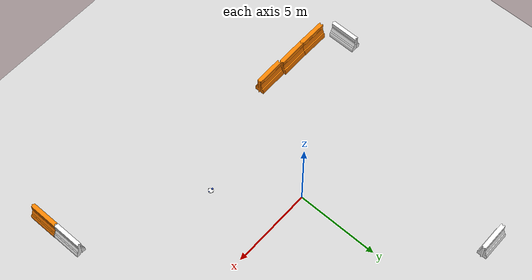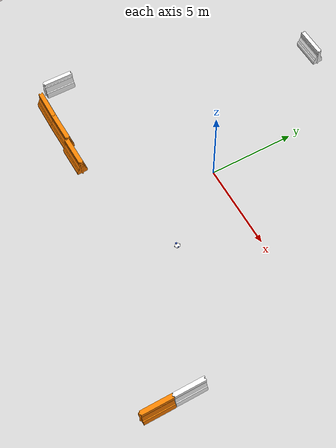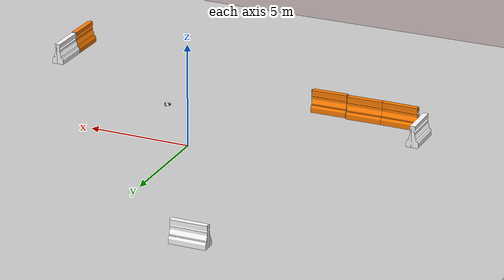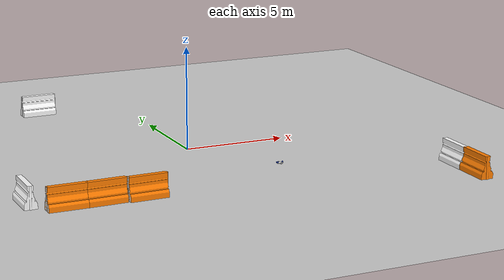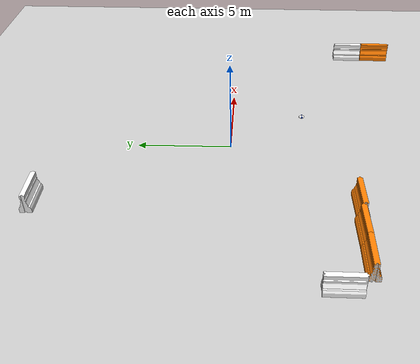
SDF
<sdf version="1.4">
 <world name="default">
  <light name="sun" type="directional">
   <pose>0 0 10 0 -0 0</pose>
   <diffuse>0.8 0.8 0.8 1</diffuse>
   <specular>0.2 0.2 0.2 1</specular>
   <attenuation>
    <range>1000</range>
    <constant>0.9</constant>
    <linear>0.01</linear>
    <quadratic>0.001</quadratic>
   </attenuation>
   <direction>-0.5 0.1 -0.9</direction>
  </light>
  <model name="ground_plane">
   <static>1</static>
   <link name="link">
    <collision name="collision">
     <geometry><plane><normal>0 0 1</normal><size>100 100</size></plane></geometry>
     <surface><friction><ode><mu>100</mu><mu2>50</mu2></ode></friction></surface>
    </collision>
    <visual name="visual">
     <cast_shadows>0</cast_shadows>
     <geometry><plane><normal>0 0 1</normal><size>100 100</size></plane></geometry>
     <material>
      <script><uri>file://media/materials/scripts/gazebo.material</uri><name>Gazebo/Grey</name></script>
     </material>
    </visual>
    <velocity_decay><linear>0</linear><angular>0</angular></velocity_decay>
   </link>
  </model>
  <physics type="ode">
   <max_step_size>0.001</max_step_size>
   <real_time_factor>1</real_time_factor>
   <real_time_update_rate>0</real_time_update_rate>
   <gravity>0 0 -9.8</gravity>
  </physics>
  <scene><ambient>0.4 0.4 0.4 1</ambient><background>0.7 0.7 0.7 1</background><shadows>1</shadows></scene>
  <spherical_coordinates>
   <surface_model>EARTH_WGS84</surface_model>
   <latitude_deg>0</latitude_deg>
   <longitude_deg>0</longitude_deg>
   <elevation>0</elevation>
   <heading_deg>0</heading_deg>
  </spherical_coordinates>
  <model name="drc_practice_organge_jersey_barrier">
   <static>1</static>
   <link name="link">
    <visual name="visual">
     <geometry>
      <mesh><uri>model://drc_practice_orange_jersey_barrier/meshes/jersey_barrier.dae</uri></mesh>
     </geometry>
    </visual>
    <collision name="collision">
     <geometry>
      <mesh><uri>model://drc_practice_orange_jersey_barrier/meshes/jersey_barrier.dae</uri></mesh>
     </geometry>
    </collision>
    <velocity_decay><linear>0</linear><angular>0</angular></velocity_decay>
   </link>
   <pose>-4.47578 -6.34119 0 0 -0 1.59364</pose>
  </model>
  <model name="drc_practice_white_jersey_barrier">
   <static>1</static>
   <link name="link">
    <visual name="visual">
     <geometry>
      <mesh><uri>model://drc_practice_white_jersey_barrier/meshes/jersey_barrier.dae</uri></mesh>
     </geometry>
    </visual>
    <collision name="collision">
     <geometry>
      <mesh><uri>model://drc_practice_white_jersey_barrier/meshes/jersey_barrier.dae</uri></mesh>
     </geometry>
    </collision>
    <velocity_decay><linear>0</linear><angular>0</angular></velocity_decay>
   </link>
   <pose>-9.48699 -4.9367 0 0 -0 0</pose>
  </model>
  <model name="drc_practice_organge_jersey_barrier_0">
   <static>1</static>
   <link name="link">
    <visual name="visual">
     <geometry>
      <mesh><uri>model://drc_practice_orange_jersey_barrier/meshes/jersey_barrier.dae</uri></mesh>
     </geometry>
    </visual>
    <collision name="collision">
     <geometry>
      <mesh><uri>model://drc_practice_orange_jersey_barrier/meshes/jersey_barrier.dae</uri></mesh>
     </geometry>
    </collision>
    <velocity_decay><linear>0</linear><angular>0</angular></velocity_decay>
   </link>
   <pose>-6.30934 -6.26351 0 0 -0 1.59467</pose>
  </model>
  <model name="drc_practice_organge_jersey_barrier_1">
   <static>1</static>
   <link name="link">
    <visual name="visual">
     <geometry>
      <mesh><uri>model://drc_practice_orange_jersey_barrier/meshes/jersey_barrier.dae</uri></mesh>
     </geometry>
    </visual>
    <collision name="collision">
     <geometry>
      <mesh><uri>model://drc_practice_orange_jersey_barrier/meshes/jersey_barrier.dae</uri></mesh>
     </geometry>
    </collision>
    <velocity_decay><linear>0</linear><angular>0</angular></velocity_decay>
   </link>
   <pose>-8.06556 -6.2736 0 0 -0 1.57109</pose>
  </model>
  <model name="drc_practice_white_jersey_barrier_0">
   <static>1</static>
   <link name="link">
    <visual name="visual">
     <geometry>
      <mesh><uri>model://drc_practice_white_jersey_barrier/meshes/jersey_barrier.dae</uri></mesh>
     </geometry>
    </visual>
    <collision name="collision">
     <geometry>
      <mesh><uri>model://drc_practice_white_jersey_barrier/meshes/jersey_barrier.dae</uri></mesh>
     </geometry>
    </collision>
    <velocity_decay><linear>0</linear><angular>0</angular></velocity_decay>
   </link>
   <pose>10.3176 -7.4365 0 0 -0 0</pose>
  </model>
  <model name="drc_practice_white_jersey_barrier_1">
   <static>1</static>
   <link name="link">
    <visual name="visual">
     <geometry>
      <mesh><uri>model://drc_practice_white_jersey_barrier/meshes/jersey_barrier.dae</uri></mesh>
     </geometry>
    </visual>
    <collision name="collision">
     <geometry>
      <mesh><uri>model://drc_practice_white_jersey_barrier/meshes/jersey_barrier.dae</uri></mesh>
     </geometry>
    </collision>
    <velocity_decay><linear>0</linear><angular>0</angular></velocity_decay>
   </link>
   <pose>-4.54271 9.38577 0 0 -0 1.59123</pose>
  </model>
  <model name="drc_practice_organge_jersey_barrier_2">
   <static>1</static>
   <link name="link">
    <visual name="visual">
     <geometry>
      <mesh><uri>model://drc_practice_orange_jersey_barrier/meshes/jersey_barrier.dae</uri></mesh>
     </geometry>
    </visual>
    <collision name="collision">
     <geometry>
      <mesh><uri>model://drc_practice_orange_jersey_barrier/meshes/jersey_barrier.dae</uri></mesh>
     </geometry>
    </collision>
    <velocity_decay><linear>0</linear><angular>0</angular></velocity_decay>
   </link>
   <pose>10.3218 -9.21435 0 0 -0 0</pose>
  </model>
  <model name="robot">
   <link name="base_footprint">
    <inertial>
     <pose>-0.00166664 0 0.0413326 0 -0 0</pose>
     <mass>6.0001</mass>
     <inertia>
      <ixx>0.0304462</ixx>
      <ixy>0</ixy>
      <ixz>0.000191674</ixz>
      <iyy>0.0461545</iyy>
      <iyz>0</iyz>
      <izz>0.0740583</izz>
     </inertia>
    </inertial>
    <collision name="base_footprint_collision_base_link">
     <pose>0 0 0.04 0 -0 0</pose>
     <geometry><cylinder><length>0.02</length><radius>0.15</radius></cylinder></geometry>
    </collision>
    <collision name="base_footprint_collision_caster_back_link">
     <pose>-0.135 9.79355e-14 0.029 0 -0 0</pose>
     <geometry><sphere><radius>0.025</radius></sphere></geometry>
    </collision>
    <collision name="base_footprint_collision_caster_front_link">
     <pose>0.115 9.79355e-14 0.027 0 -0 0</pose>
     <geometry><sphere><radius>0.025</radius></sphere></geometry>
    </collision>
    <visual name="base_footprint_visual"><geometry><box><size>0.001 0.001 0.001</size></box></geometry></visual>
    <visual name="base_footprint_visual_base_link">
     <pose>0 0 0.04 0 -0 0</pose>
     <geometry><cylinder><length>0.02</length><radius>0.15</radius></cylinder></geometry>
     <material><script><name>Gazebo/White</name><uri>__default__</uri></script></material>
    </visual>
    <visual name="base_footprint_visual_caster_back_link">
     <pose>-0.115 9.79355e-14 0.029 0 -0 0</pose>
     <geometry><sphere><radius>0.025</radius></sphere></geometry>
    </visual>
    <visual name="base_footprint_visual_caster_front_link">
     <pose>0.115 9.79355e-14 0.027 0 -0 0</pose>
     <geometry><sphere><radius>0.025</radius></sphere></geometry>
    </visual>
    <visual name="base_footprint_visual_hokuyo_link">
     <pose>0.125 0 0.0725 0 -0 0</pose>
     <geometry><box><size>0.05 0.05 0.05</size></box></geometry>
     <material><script><name>Gazebo/Blue</name><uri>__default__</uri></script></material>
    </visual>
    <visual name="base_footprint_visual_hokuyo_link_b">
     <pose>-0.125 0 0.0725 0 -0 3.14</pose>
     <geometry><box><size>0.0833333 0.0833333 0.05</size></box></geometry>
     <material><script><name>Gazebo/Blue</name><uri>__default__</uri></script></material>
     <material><script><name>Gazebo/Red</name><uri>__default__</uri></script></material>
    </visual>
    <velocity_decay><linear>0</linear><angular>0</angular></velocity_decay>
    <velocity_decay><linear>0</linear><angular>0</angular></velocity_decay>
    <velocity_decay><linear>0</linear><angular>0</angular></velocity_decay>
    <velocity_decay><linear>0</linear><angular>0</angular></velocity_decay>
    <velocity_decay><linear>0</linear><angular>0</angular></velocity_decay>
    <sensor name="head_hokuyo_sensor" type="ray">
     <visualize>0</visualize>
     <update_rate>40</update_rate>
     <ray>
      <scan>
       <horizontal>
        <samples>720</samples>
        <resolution>1</resolution>
        <min_angle>-1.5708</min_angle>
        <max_angle>1.5708</max_angle>
       </horizontal>
      </scan>
      <range><min>0.1</min><max>10</max><resolution>0.001</resolution></range>
     </ray>
     <plugin name="gazebo_ros_head_hokuyo_controller" filename="libgazebo_ros_laser.so">
      <topicName>/scan</topicName>
      <frameName>hokuyo_link</frameName>
      <robotNamespace>/robot/</robotNamespace>
     </plugin>
     <pose>0.125 0 0.0725 0 -0 0</pose>
    </sensor>
    <velocity_decay><linear>0</linear><angular>0</angular></velocity_decay>
    <sensor name="back_hokuyo_sensor" type="ray">
     <visualize>0</visualize>
     <update_rate>40</update_rate>
     <ray>
      <scan>
       <horizontal>
        <samples>720</samples>
        <resolution>1</resolution>
        <min_angle>-1.5708</min_angle>
        <max_angle>1.5708</max_angle>
       </horizontal>
      </scan>
      <range><min>0.1</min><max>10</max><resolution>0.001</resolution></range>
     </ray>
     <plugin name="gazebo_ros_head_hokuyo_controller" filename="libgazebo_ros_laser.so">
      <topicName>/back/scan</topicName>
      <frameName>hokuyo_link_b</frameName>
      <robotNamespace>/robot/</robotNamespace>
     </plugin>
     <pose>-0.125 0 0.0725 0 -0 3.14</pose>
    </sensor>
   </link>
   <link name="front_left_wheel">
    <pose>0 -0.15 0.04 0 -0 0</pose>
    <inertial>
     <mass>2.5</mass>
     <inertia>
      <ixx>0.00108333</ixx>
      <ixy>0</ixy>
      <ixz>0</ixz>
      <iyy>0.00108333</iyy>
      <iyz>0</iyz>
      <izz>0.002</izz>
     </inertia>
    </inertial>
    <collision name="front_left_wheel_collision">
     <pose>0 0 0 1.5708 -0 0</pose>
     <geometry><cylinder><length>0.02</length><radius>0.04</radius></cylinder></geometry>
     <surface>
      <contact><ode><kp>1e+07</kp><kd>1</kd></ode></contact>
      <friction><ode><mu>1</mu><mu2>1</mu2><fdir1>1 0 0</fdir1></ode></friction>
     </surface>
    </collision>
    <visual name="front_left_wheel_visual">
     <pose>0 0 0 1.5708 -0 0</pose>
     <geometry><cylinder><length>0.02</length><radius>0.04</radius></cylinder></geometry>
     <material><script><name>Gazebo/Grey</name><uri>__default__</uri></script></material>
    </visual>
    <velocity_decay><linear>0</linear><angular>0</angular></velocity_decay>
   </link>
   <joint name="front_left_wheel_joint" type="revolute">
    <child>front_left_wheel</child>
    <parent>base_footprint</parent>
    <axis><xyz>0 1 0</xyz><limit><lower>-1e+16</lower><upper>1e+16</upper></limit></axis>
   </joint>
   <link name="front_right_wheel">
    <pose>0 0.15 0.04 0 -0 0</pose>
    <inertial>
     <mass>2.5</mass>
     <inertia>
      <ixx>0.00108333</ixx>
      <ixy>0</ixy>
      <ixz>0</ixz>
      <iyy>0.00108333</iyy>
      <iyz>0</iyz>
      <izz>0.002</izz>
     </inertia>
    </inertial>
    <collision name="front_right_wheel_collision">
     <pose>0 0 0 1.5708 -0 0</pose>
     <geometry><cylinder><length>0.02</length><radius>0.04</radius></cylinder></geometry>
     <surface>
      <contact><ode><kp>1e+07</kp><kd>1</kd></ode></contact>
      <friction><ode><mu>1</mu><mu2>1</mu2><fdir1>1 0 0</fdir1></ode></friction>
     </surface>
    </collision>
    <visual name="front_right_wheel_visual">
     <pose>0 0 0 1.5708 -0 0</pose>
     <geometry><cylinder><length>0.02</length><radius>0.04</radius></cylinder></geometry>
     <material><script><name>Gazebo/Grey</name><uri>__default__</uri></script></material>
    </visual>
    <velocity_decay><linear>0</linear><angular>0</angular></velocity_decay>
   </link>
   <joint name="front_right_wheel_joint" type="revolute">
    <child>front_right_wheel</child>
    <parent>base_footprint</parent>
    <axis><xyz>0 1 0</xyz><limit><lower>-1e+16</lower><upper>1e+16</upper></limit></axis>
   </joint>
   <static>0</static>
   <plugin name="differential_drive_controller" filename="libgazebo_ros_diff_drive.so">
    <rosDebugLevel>Debug</rosDebugLevel>
    <publishWheelTF>false</publishWheelTF>
    <robotNamespace>/</robotNamespace>
    <publishTf>1</publishTf>
    <publishWheelJointState>false</publishWheelJointState>
    <alwaysOn>true</alwaysOn>
    <updateRate>100.0</updateRate>
    <leftJoint>front_left_wheel_joint</leftJoint>
    <rightJoint>front_right_wheel_joint</rightJoint>
    <wheelSeparation>0.3</wheelSeparation>
    <wheelDiameter>0.08</wheelDiameter>
    <broadcastTF>1</broadcastTF>
    <wheelTorque>30</wheelTorque>
    <wheelAcceleration>1.8</wheelAcceleration>
    <commandTopic>cmd_vel</commandTopic>
    <odometryFrame>odom</odometryFrame>
    <odometryTopic>odom</odometryTopic>
    <robotBaseFrame>base_footprint</robotBaseFrame>
   </plugin>
   <pose>3.00036 -4 1.5e-05 0 -0.02965 0.000488</pose>
  </model>
 </world>
</sdf>
